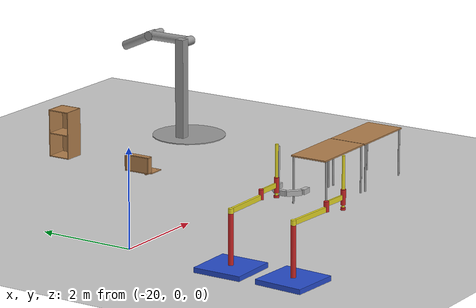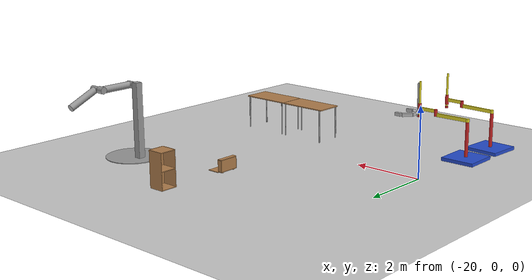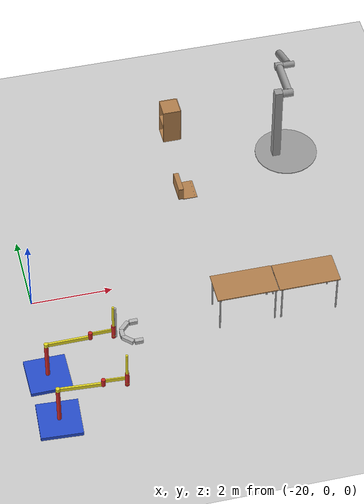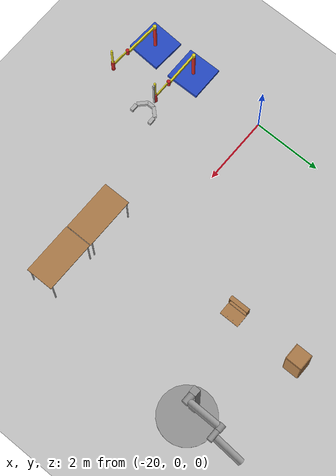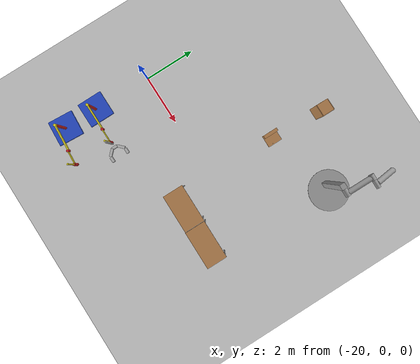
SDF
<sdf version="1.6">
 <world name="default">
  <model name="ground_plane">
   <static>1</static>
   <link name="link">
    <collision name="collision">
     <geometry><plane><normal>0 0 1</normal><size>100 100</size></plane></geometry>
     <surface>
      <contact><collide_bitmask>65535</collide_bitmask></contact>
      <friction><ode><mu>100</mu><mu2>50</mu2></ode></friction>
     </surface>
    </collision>
    <visual name="visual">
     <cast_shadows>0</cast_shadows>
     <geometry><plane><normal>0 0 1</normal><size>100 100</size></plane></geometry>
     <material>
      <script><uri>file://media/materials/scripts/gazebo.material</uri><name>Gazebo/Grey</name></script>
     </material>
    </visual>
   </link>
  </model>
  <model name="table_2">
   <static>1</static>
   <link name="link">
    <collision name="surface">
     <pose>0 0 1 0 -0 0</pose>
     <geometry><box><size>1.5 0.8 0.03</size></box></geometry>
     <surface><friction><ode><mu>0.6</mu><mu2>0.6</mu2></ode></friction></surface>
    </collision>
    <visual name="visual1">
     <pose>0 0 1 0 -0 0</pose>
     <geometry><box><size>1.5 0.8 0.03</size></box></geometry>
     <material>
      <script><uri>file://media/materials/scripts/gazebo.material</uri><name>Gazebo/Wood</name></script>
     </material>
    </visual>
    <collision name="front_left_leg">
     <pose>0.68 0.38 0.5 0 -0 0</pose>
     <geometry><cylinder><radius>0.02</radius><length>1</length></cylinder></geometry>
    </collision>
    <visual name="front_left_leg">
     <pose>0.68 0.38 0.5 0 -0 0</pose>
     <geometry><cylinder><radius>0.02</radius><length>1</length></cylinder></geometry>
     <material>
      <script><uri>file://media/materials/scripts/gazebo.material</uri><name>Gazebo/Grey</name></script>
     </material>
    </visual>
    <collision name="front_right_leg">
     <pose>0.68 -0.38 0.5 0 -0 0</pose>
     <geometry><cylinder><radius>0.02</radius><length>1</length></cylinder></geometry>
    </collision>
    <visual name="front_right_leg">
     <pose>0.68 -0.38 0.5 0 -0 0</pose>
     <geometry><cylinder><radius>0.02</radius><length>1</length></cylinder></geometry>
     <material>
      <script><uri>file://media/materials/scripts/gazebo.material</uri><name>Gazebo/Grey</name></script>
     </material>
    </visual>
    <collision name="back_right_leg">
     <pose>-0.68 -0.38 0.5 0 -0 0</pose>
     <geometry><cylinder><radius>0.02</radius><length>1</length></cylinder></geometry>
    </collision>
    <visual name="back_right_leg">
     <pose>-0.68 -0.38 0.5 0 -0 0</pose>
     <geometry><cylinder><radius>0.02</radius><length>1</length></cylinder></geometry>
     <material>
      <script><uri>file://media/materials/scripts/gazebo.material</uri><name>Gazebo/Grey</name></script>
     </material>
    </visual>
    <collision name="back_left_leg">
     <pose>-0.68 0.38 0.5 0 -0 0</pose>
     <geometry><cylinder><radius>0.02</radius><length>1</length></cylinder></geometry>
    </collision>
    <visual name="back_left_leg">
     <pose>-0.68 0.38 0.5 0 -0 0</pose>
     <geometry><cylinder><radius>0.02</radius><length>1</length></cylinder></geometry>
     <material>
      <script><uri>file://media/materials/scripts/gazebo.material</uri><name>Gazebo/Grey</name></script>
     </material>
    </visual>
   </link>
   <pose>-13.5378 -1.39791 0 0 -0 0</pose>
  </model>
  <model name="table_3">
   <static>1</static>
   <link name="link">
    <collision name="surface">
     <pose>0 0 1 0 -0 0</pose>
     <geometry><box><size>1.5 0.8 0.03</size></box></geometry>
     <surface><friction><ode><mu>0.6</mu><mu2>0.6</mu2></ode></friction></surface>
    </collision>
    <visual name="visual1">
     <pose>0 0 1 0 -0 0</pose>
     <geometry><box><size>1.5 0.8 0.03</size></box></geometry>
     <material>
      <script><uri>file://media/materials/scripts/gazebo.material</uri><name>Gazebo/Wood</name></script>
     </material>
    </visual>
    <collision name="front_left_leg">
     <pose>0.68 0.38 0.5 0 -0 0</pose>
     <geometry><cylinder><radius>0.02</radius><length>1</length></cylinder></geometry>
    </collision>
    <visual name="front_left_leg">
     <pose>0.68 0.38 0.5 0 -0 0</pose>
     <geometry><cylinder><radius>0.02</radius><length>1</length></cylinder></geometry>
     <material>
      <script><uri>file://media/materials/scripts/gazebo.material</uri><name>Gazebo/Grey</name></script>
     </material>
    </visual>
    <collision name="front_right_leg">
     <pose>0.68 -0.38 0.5 0 -0 0</pose>
     <geometry><cylinder><radius>0.02</radius><length>1</length></cylinder></geometry>
    </collision>
    <visual name="front_right_leg">
     <pose>0.68 -0.38 0.5 0 -0 0</pose>
     <geometry><cylinder><radius>0.02</radius><length>1</length></cylinder></geometry>
     <material>
      <script><uri>file://media/materials/scripts/gazebo.material</uri><name>Gazebo/Grey</name></script>
     </material>
    </visual>
    <collision name="back_right_leg">
     <pose>-0.68 -0.38 0.5 0 -0 0</pose>
     <geometry><cylinder><radius>0.02</radius><length>1</length></cylinder></geometry>
    </collision>
    <visual name="back_right_leg">
     <pose>-0.68 -0.38 0.5 0 -0 0</pose>
     <geometry><cylinder><radius>0.02</radius><length>1</length></cylinder></geometry>
     <material>
      <script><uri>file://media/materials/scripts/gazebo.material</uri><name>Gazebo/Grey</name></script>
     </material>
    </visual>
    <collision name="back_left_leg">
     <pose>-0.68 0.38 0.5 0 -0 0</pose>
     <geometry><cylinder><radius>0.02</radius><length>1</length></cylinder></geometry>
    </collision>
    <visual name="back_left_leg">
     <pose>-0.68 0.38 0.5 0 -0 0</pose>
     <geometry><cylinder><radius>0.02</radius><length>1</length></cylinder></geometry>
     <material>
      <script><uri>file://media/materials/scripts/gazebo.material</uri><name>Gazebo/Grey</name></script>
     </material>
    </visual>
   </link>
   <pose>-15.0543 -1.38833 0 0 -0 0</pose>
  </model>
  <model name="wooden_case">
   <link name="base">
    <pose>0 0 0.024 0 -0 0</pose>
    <inertial>
     <pose>-0.022184 0 0.171592 0 -0 0</pose>
     <mass>3.96264</mass>
     <inertia>
      <ixx>0.213536</ixx>
      <ixy>0</ixy>
      <ixz>0.000779377</ixz>
      <iyy>0.0708943</iyy>
      <iyz>0</iyz>
      <izz>0.154604</izz>
     </inertia>
    </inertial>
    <collision name="collision_back">
     <pose>-0.053975 0 0.1778 0 -0 0</pose>
     <geometry><box><size>0.01905 0.5461 0.3175</size></box></geometry>
     <surface>
      <contact>
       <poissons_ratio>0.347</poissons_ratio>
       <elastic_modulus>8.8e+09</elastic_modulus>
       <ode><kp>100000</kp><kd>100</kd><max_vel>100</max_vel><min_depth>0.001</min_depth></ode>
      </contact>
      <friction>
       <torsional>
        <coefficient>1</coefficient>
        <use_patch_radius>0</use_patch_radius>
        <surface_radius>0.01</surface_radius>
       </torsional>
      </friction>
     </surface>
    </collision>
    <visual name="visual_back">
     <pose>-0.053975 0 0.1778 0 -0 0</pose>
     <geometry><box><size>0.01905 0.5461 0.3175</size></box></geometry>
     <material>
      <script><uri>file://media/materials/scripts/gazebo.material</uri><name>Gazebo/Wood</name></script>
     </material>
    </visual>
    <collision name="collision_bottom">
     <pose>0 0 0.009525 0 -0 0</pose>
     <geometry><box><size>0.127 0.5842 0.01905</size></box></geometry>
     <surface>
      <contact>
       <poissons_ratio>0.347</poissons_ratio>
       <elastic_modulus>8.8e+09</elastic_modulus>
       <ode><kp>100000</kp><kd>100</kd><max_vel>100</max_vel><min_depth>0.001</min_depth></ode>
      </contact>
      <friction>
       <torsional>
        <coefficient>1</coefficient>
        <use_patch_radius>0</use_patch_radius>
        <surface_radius>0.01</surface_radius>
       </torsional>
      </friction>
     </surface>
    </collision>
    <visual name="visual_bottom">
     <pose>0 0 0.009525 0 -0 0</pose>
     <geometry><box><size>0.127 0.5842 0.01905</size></box></geometry>
     <material>
      <script><uri>file://media/materials/scripts/gazebo.material</uri><name>Gazebo/Wood</name></script>
     </material>
    </visual>
    <collision name="collision_top">
     <pose>0 0 0.346075 0 -0 0</pose>
     <geometry><box><size>0.127 0.5842 0.01905</size></box></geometry>
     <surface>
      <contact>
       <poissons_ratio>0.347</poissons_ratio>
       <elastic_modulus>8.8e+09</elastic_modulus>
       <ode><kp>100000</kp><kd>100</kd><max_vel>100</max_vel><min_depth>0.001</min_depth></ode>
      </contact>
      <friction>
       <torsional>
        <coefficient>1</coefficient>
        <use_patch_radius>0</use_patch_radius>
        <surface_radius>0.01</surface_radius>
       </torsional>
      </friction>
     </surface>
    </collision>
    <visual name="visual_top">
     <pose>0 0 0.346075 0 -0 0</pose>
     <geometry><box><size>0.127 0.5842 0.01905</size></box></geometry>
     <material>
      <script><uri>file://media/materials/scripts/gazebo.material</uri><name>Gazebo/Wood</name></script>
     </material>
    </visual>
    <collision name="collision_left">
     <pose>0 -0.282575 0.1778 0 -0 0</pose>
     <geometry><box><size>0.127 0.01905 0.3175</size></box></geometry>
     <surface>
      <contact>
       <poissons_ratio>0.347</poissons_ratio>
       <elastic_modulus>8.8e+09</elastic_modulus>
       <ode><kp>100000</kp><kd>100</kd><max_vel>100</max_vel><min_depth>0.001</min_depth></ode>
      </contact>
      <friction>
       <torsional>
        <coefficient>1</coefficient>
        <use_patch_radius>0</use_patch_radius>
        <surface_radius>0.01</surface_radius>
       </torsional>
      </friction>
     </surface>
    </collision>
    <visual name="visual_left">
     <pose>0 -0.282575 0.1778 0 -0 0</pose>
     <geometry><box><size>0.127 0.01905 0.3175</size></box></geometry>
     <material>
      <script><uri>file://media/materials/scripts/gazebo.material</uri><name>Gazebo/Wood</name></script>
     </material>
    </visual>
    <collision name="collision_right">
     <pose>0 0.282575 0.1778 0 -0 0</pose>
     <geometry><box><size>0.127 0.01905 0.3175</size></box></geometry>
     <surface>
      <contact>
       <poissons_ratio>0.347</poissons_ratio>
       <elastic_modulus>8.8e+09</elastic_modulus>
       <ode><kp>100000</kp><kd>100</kd><max_vel>100</max_vel><min_depth>0.001</min_depth></ode>
      </contact>
      <friction>
       <torsional>
        <coefficient>1</coefficient>
        <use_patch_radius>0</use_patch_radius>
        <surface_radius>0.01</surface_radius>
       </torsional>
      </friction>
     </surface>
    </collision>
    <visual name="visual_right">
     <pose>0 0.282575 0.1778 0 -0 0</pose>
     <geometry><box><size>0.127 0.01905 0.3175</size></box></geometry>
     <material>
      <script><uri>file://media/materials/scripts/gazebo.material</uri><name>Gazebo/Wood</name></script>
     </material>
    </visual>
    <collision name="collision_block_left">
     <pose>0.0095 -0.2151 -0.012 0 -0 0</pose>
     <geometry><box><size>0.108 0.05 0.024</size></box></geometry>
     <surface>
      <contact>
       <poissons_ratio>0.347</poissons_ratio>
       <elastic_modulus>8.8e+09</elastic_modulus>
       <ode><kp>100000</kp><kd>100</kd><max_vel>100</max_vel><min_depth>0.001</min_depth></ode>
      </contact>
      <friction>
       <torsional>
        <coefficient>1</coefficient>
        <use_patch_radius>0</use_patch_radius>
        <surface_radius>0.01</surface_radius>
       </torsional>
      </friction>
     </surface>
    </collision>
    <visual name="visual_block_left">
     <pose>0.0095 -0.2151 -0.012 0 -0 0</pose>
     <geometry><box><size>0.108 0.05 0.024</size></box></geometry>
     <material>
      <script><uri>file://media/materials/scripts/gazebo.material</uri><name>Gazebo/Wood</name></script>
     </material>
    </visual>
    <collision name="collision_block_right">
     <pose>0.0095 0.2151 -0.012 0 -0 0</pose>
     <geometry><box><size>0.108 0.05 0.024</size></box></geometry>
     <surface>
      <contact>
       <poissons_ratio>0.347</poissons_ratio>
       <elastic_modulus>8.8e+09</elastic_modulus>
       <ode><kp>100000</kp><kd>100</kd><max_vel>100</max_vel><min_depth>0.001</min_depth></ode>
      </contact>
      <friction>
       <torsional>
        <coefficient>1</coefficient>
        <use_patch_radius>0</use_patch_radius>
        <surface_radius>0.01</surface_radius>
       </torsional>
      </friction>
     </surface>
    </collision>
    <visual name="visual_block_right">
     <pose>0.0095 0.2151 -0.012 0 -0 0</pose>
     <geometry><box><size>0.108 0.05 0.024</size></box></geometry>
     <material>
      <script><uri>file://media/materials/scripts/gazebo.material</uri><name>Gazebo/Wood</name></script>
     </material>
    </visual>
   </link>
   <link name="lid">
    <pose>0.243775 0 0.009525 0 -0 0</pose>
    <inertial>
     <mass>1.97874</mass>
     <inertia>
      <ixx>0.0563367</ixx>
      <ixy>0</ixy>
      <ixz>0</ixz>
      <iyy>0.020911</iyy>
      <iyz>0</iyz>
      <izz>0.0771281</izz>
     </inertia>
    </inertial>
    <collision name="collision">
     <geometry><box><size>0.3556 0.5842 0.01905</size></box></geometry>
     <surface>
      <contact>
       <poissons_ratio>0.347</poissons_ratio>
       <elastic_modulus>8.8e+09</elastic_modulus>
       <ode><kp>100000</kp><kd>100</kd><max_vel>100</max_vel><min_depth>0.001</min_depth></ode>
      </contact>
      <friction>
       <torsional>
        <coefficient>1</coefficient>
        <use_patch_radius>0</use_patch_radius>
        <surface_radius>0.01</surface_radius>
       </torsional>
      </friction>
     </surface>
    </collision>
    <visual name="visual">
     <geometry><box><size>0.3556 0.5842 0.01905</size></box></geometry>
     <material>
      <script><uri>file://media/materials/scripts/gazebo.material</uri><name>Gazebo/Wood</name></script>
     </material>
    </visual>
    <visual name="tee_nut_1">
     <pose>0.122 -0.216 0 0 -0 0</pose>
     <geometry><cylinder><radius>0.00635</radius><length>0.0192405</length></cylinder></geometry>
     <material>
      <script><uri>file://media/materials/scripts/gazebo.material</uri><name>Gazebo/Grey</name></script>
     </material>
    </visual>
    <visual name="tee_nut_2">
     <pose>0.122 -0.088 0 0 -0 0</pose>
     <geometry><cylinder><radius>0.00635</radius><length>0.0192405</length></cylinder></geometry>
     <material>
      <script><uri>file://media/materials/scripts/gazebo.material</uri><name>Gazebo/Grey</name></script>
     </material>
    </visual>
    <visual name="tee_nut_3">
     <pose>0.122 0.088 0 0 -0 0</pose>
     <geometry><cylinder><radius>0.00635</radius><length>0.0192405</length></cylinder></geometry>
     <material>
      <script><uri>file://media/materials/scripts/gazebo.material</uri><name>Gazebo/Grey</name></script>
     </material>
    </visual>
    <visual name="tee_nut_4">
     <pose>0.122 0.216 0 0 -0 0</pose>
     <geometry><cylinder><radius>0.00635</radius><length>0.0192405</length></cylinder></geometry>
     <material>
      <script><uri>file://media/materials/scripts/gazebo.material</uri><name>Gazebo/Grey</name></script>
     </material>
    </visual>
   </link>
   <joint name="lid_hinge" type="revolute">
    <pose>-0.1778 0 0.01905 0 -0 0</pose>
    <parent>base</parent>
    <child>lid</child>
    <axis>
     <xyz>0 1 0</xyz>
     <limit><upper>0.523599</upper><lower>-1.5708</lower></limit>
     <use_parent_model_frame>0</use_parent_model_frame>
     <dynamics><spring_reference>0</spring_reference><spring_stiffness>0</spring_stiffness></dynamics>
    </axis>
   </joint>
   <pose>-15.6673 2.81921 0.008943 0 -0.000426 0.00517</pose>
  </model>
  <model name="cabinet">
   <static>1</static>
   <link name="cabinet_bottom_plate">
    <inertial>
     <pose>0 0 -1 0 -0 0</pose>
     <inertia><ixx>2.05</ixx><ixy>0</ixy><ixz>0</ixz><iyy>2.05</iyy><iyz>0</iyz><izz>2.05</izz></inertia>
     <mass>25</mass>
    </inertial>
    <collision name="cabinet_bottom_plate_geom">
     <pose>0 0 0.01 0 -0 0</pose>
     <geometry><box><size>0.45 0.45 0.02</size></box></geometry>
    </collision>
    <visual name="cabinet_bottom_plate_geom_visual">
     <pose>0 0 0.01 0 -0 0</pose>
     <geometry><box><size>0.45 0.45 0.02</size></box></geometry>
     <material>
      <script><uri>file://media/materials/scripts/gazebo.material</uri><name>Gazebo/Wood</name></script>
     </material>
    </visual>
    <collision name="cabinet_bottom_plate_geom_cabinet_back_plate">
     <pose>0.235 0 0.51 0 -0 0</pose>
     <geometry><box><size>0.02 0.45 1.02</size></box></geometry>
    </collision>
    <visual name="cabinet_bottom_plate_geom_cabinet_back_plate_visual">
     <pose>0.235 0 0.51 0 -0 0</pose>
     <geometry><box><size>0.02 0.45 1.02</size></box></geometry>
     <material>
      <script><uri>file://media/materials/scripts/gazebo.material</uri><name>Gazebo/Wood</name></script>
     </material>
    </visual>
    <collision name="cabinet_bottom_plate_geom_cabinet_left_plate">
     <pose>0 0.235 0.51 0 -0 0</pose>
     <geometry><box><size>0.45 0.02 1.02</size></box></geometry>
    </collision>
    <visual name="cabinet_bottom_plate_geom_cabinet_left_plate_visual">
     <pose>0 0.235 0.51 0 -0 0</pose>
     <geometry><box><size>0.45 0.02 1.02</size></box></geometry>
     <material>
      <script><uri>file://media/materials/scripts/gazebo.material</uri><name>Gazebo/Wood</name></script>
     </material>
    </visual>
    <collision name="cabinet_bottom_plate_geom_cabinet_middle_plate">
     <pose>0 0 0.51 0 -0 0</pose>
     <geometry><box><size>0.45 0.45 0.02</size></box></geometry>
    </collision>
    <visual name="cabinet_bottom_plate_geom_cabinet_middle_plate_visual">
     <pose>0 0 0.51 0 -0 0</pose>
     <geometry><box><size>0.45 0.45 0.02</size></box></geometry>
     <material>
      <script><uri>file://media/materials/scripts/gazebo.material</uri><name>Gazebo/Wood</name></script>
     </material>
    </visual>
    <collision name="cabinet_bottom_plate_geom_cabinet_right_plate">
     <pose>0 -0.235 0.51 0 -0 0</pose>
     <geometry><box><size>0.45 0.02 1.02</size></box></geometry>
    </collision>
    <visual name="cabinet_bottom_plate_geom_cabinet_right_plate_visual">
     <pose>0 -0.235 0.51 0 -0 0</pose>
     <geometry><box><size>0.45 0.02 1.02</size></box></geometry>
     <material>
      <script><uri>file://media/materials/scripts/gazebo.material</uri><name>Gazebo/Wood</name></script>
     </material>
    </visual>
    <collision name="cabinet_bottom_plate_geom_cabinet_top_plate">
     <pose>0 0 1.01 0 -0 0</pose>
     <geometry><box><size>0.45 0.45 0.02</size></box></geometry>
    </collision>
    <visual name="cabinet_bottom_plate_geom_cabinet_top_plate_visual">
     <pose>0 0 1.01 0 -0 0</pose>
     <geometry><box><size>0.45 0.45 0.02</size></box></geometry>
     <material>
      <script><uri>file://media/materials/scripts/gazebo.material</uri><name>Gazebo/Wood</name></script>
     </material>
    </visual>
   </link>
   <pose>-15.4113 4.88429 0 0 -0 0</pose>
  </model>
  <model name="double_pendulum_with_base">
   <link name="base">
    <inertial>
     <mass>100</mass>
     <inertia><ixx>1</ixx><ixy>0</ixy><ixz>0</ixz><iyy>1</iyy><iyz>0</iyz><izz>1</izz></inertia>
    </inertial>
    <visual name="vis_plate_on_ground">
     <pose>0 0 0.01 0 -0 0</pose>
     <geometry><cylinder><radius>0.8</radius><length>0.02</length></cylinder></geometry>
     <material>
      <script><uri>file://media/materials/scripts/gazebo.material</uri><name>Gazebo/Grey</name></script>
     </material>
    </visual>
    <visual name="vis_pole">
     <pose>-0.275 0 1.1 0 -0 0</pose>
     <geometry><box><size>0.2 0.2 2.2</size></box></geometry>
     <material>
      <script><uri>file://media/materials/scripts/gazebo.material</uri><name>Gazebo/Grey</name></script>
     </material>
    </visual>
    <collision name="col_plate_on_ground">
     <pose>0 0 0.01 0 -0 0</pose>
     <geometry><cylinder><radius>0.8</radius><length>0.02</length></cylinder></geometry>
    </collision>
    <collision name="col_pole">
     <pose>-0.275 0 1.1 0 -0 0</pose>
     <geometry><box><size>0.2 0.2 2.2</size></box></geometry>
    </collision>
   </link>
   <link name="upper_link">
    <pose>0 0 2.1 -1.5708 0 0</pose>
    <inertial>
     <pose>0 0 0.5 0 -0 0</pose>
     <inertia><ixx>1</ixx><ixy>0</ixy><ixz>0</ixz><iyy>1</iyy><iyz>0</iyz><izz>1</izz></inertia>
     <mass>1</mass>
    </inertial>
    <visual name="vis_upper_joint">
     <pose>-0.05 0 0 3.14159 1.57079 3.14159</pose>
     <geometry><cylinder><radius>0.1</radius><length>0.3</length></cylinder></geometry>
     <material>
      <script><uri>file://media/materials/scripts/gazebo.material</uri><name>Gazebo/Grey</name></script>
     </material>
    </visual>
    <visual name="vis_lower_joint">
     <pose>0 0 1 3.14159 1.57079 3.14159</pose>
     <geometry><cylinder><radius>0.1</radius><length>0.2</length></cylinder></geometry>
     <material>
      <script><uri>file://media/materials/scripts/gazebo.material</uri><name>Gazebo/Grey</name></script>
     </material>
    </visual>
    <visual name="vis_cylinder">
     <pose>0 0 0.5 0 -0 0</pose>
     <geometry><cylinder><radius>0.1</radius><length>0.9</length></cylinder></geometry>
     <material>
      <script><uri>file://media/materials/scripts/gazebo.material</uri><name>Gazebo/Grey</name></script>
     </material>
    </visual>
    <collision name="col_upper_joint">
     <pose>-0.05 0 0 3.14159 1.57079 3.14159</pose>
     <geometry><cylinder><radius>0.1</radius><length>0.3</length></cylinder></geometry>
    </collision>
    <collision name="col_lower_joint">
     <pose>0 0 1 3.14159 1.57079 3.14159</pose>
     <geometry><cylinder><radius>0.1</radius><length>0.2</length></cylinder></geometry>
    </collision>
    <collision name="col_cylinder">
     <pose>0 0 0.5 0 -0 0</pose>
     <geometry><cylinder><radius>0.1</radius><length>0.9</length></cylinder></geometry>
    </collision>
   </link>
   <link name="lower_link">
    <pose>0.25 1 2.1 -2 0 0</pose>
    <inertial>
     <pose>0 0 0.5 0 -0 0</pose>
     <inertia><ixx>1</ixx><ixy>0</ixy><ixz>0</ixz><iyy>1</iyy><iyz>0</iyz><izz>1</izz></inertia>
     <mass>1</mass>
    </inertial>
    <visual name="vis_lower_joint">
     <pose>0 0 0 3.14159 1.57079 3.14159</pose>
     <geometry><cylinder><radius>0.08</radius><length>0.3</length></cylinder></geometry>
     <material>
      <script><uri>file://media/materials/scripts/gazebo.material</uri><name>Gazebo/Grey</name></script>
     </material>
    </visual>
    <visual name="vis_cylinder">
     <pose>0 0 0.5 0 -0 0</pose>
     <geometry><cylinder><radius>0.1</radius><length>0.9</length></cylinder></geometry>
     <material>
      <script><uri>file://media/materials/scripts/gazebo.material</uri><name>Gazebo/Grey</name></script>
     </material>
    </visual>
    <collision name="col_lower_joint">
     <pose>0 0 0 3.14159 1.57079 3.14159</pose>
     <geometry><cylinder><radius>0.08</radius><length>0.3</length></cylinder></geometry>
    </collision>
    <collision name="col_cylinder">
     <pose>0 0 0.5 0 -0 0</pose>
     <geometry><cylinder><radius>0.1</radius><length>0.9</length></cylinder></geometry>
    </collision>
   </link>
   <joint name="upper_joint" type="revolute">
    <parent>base</parent>
    <child>upper_link</child>
    <axis>
     <xyz>1 0 0</xyz>
     <use_parent_model_frame>0</use_parent_model_frame>
     <limit><lower>-1e+16</lower><upper>1e+16</upper></limit>
     <dynamics><spring_reference>0</spring_reference><spring_stiffness>0</spring_stiffness></dynamics>
    </axis>
   </joint>
   <joint name="lower_joint" type="revolute">
    <parent>upper_link</parent>
    <child>lower_link</child>
    <axis>
     <xyz>1 0 0</xyz>
     <use_parent_model_frame>0</use_parent_model_frame>
     <limit><lower>-1e+16</lower><upper>1e+16</upper></limit>
     <dynamics><spring_reference>0</spring_reference><spring_stiffness>0</spring_stiffness></dynamics>
    </axis>
   </joint>
   <pose>-12.6435 3.57886 0.01 0 0 -0.006716</pose>
  </model>
  <model name="simple_arm">
   <link name="arm_base">
    <inertial>
     <pose>0 0 0.00099 0 -0 0</pose>
     <inertia><ixx>1.11</ixx><ixy>0</ixy><ixz>0</ixz><iyy>100.11</iyy><iyz>0</iyz><izz>1.01</izz></inertia>
     <mass>101</mass>
    </inertial>
    <collision name="arm_base_geom">
     <pose>0 0 0.05 0 -0 0</pose>
     <geometry><box><size>1 1 0.1</size></box></geometry>
    </collision>
    <visual name="arm_base_geom_visual">
     <pose>0 0 0.05 0 -0 0</pose>
     <geometry><box><size>1 1 0.1</size></box></geometry>
     <material>
      <script><uri>file://media/materials/scripts/gazebo.material</uri><name>Gazebo/Blue</name></script>
     </material>
    </visual>
    <collision name="arm_base_geom_arm_trunk">
     <pose>0 0 0.6 0 -0 0</pose>
     <geometry><cylinder><radius>0.05</radius><length>1</length></cylinder></geometry>
    </collision>
    <visual name="arm_base_geom_arm_trunk_visual">
     <pose>0 0 0.6 0 -0 0</pose>
     <geometry><cylinder><radius>0.05</radius><length>1</length></cylinder></geometry>
     <material>
      <script><uri>file://media/materials/scripts/gazebo.material</uri><name>Gazebo/Red</name></script>
     </material>
    </visual>
   </link>
   <link name="arm_shoulder_pan">
    <pose>0 0 1.1 0 -0 0</pose>
    <inertial>
     <pose>0.045455 0 0 0 -0 0</pose>
     <inertia><ixx>0.011</ixx><ixy>0</ixy><ixz>0</ixz><iyy>0.0225</iyy><iyz>0</iyz><izz>0.0135</izz></inertia>
     <mass>1.1</mass>
    </inertial>
    <collision name="arm_shoulder_pan_geom">
     <pose>0 0 0.05 0 -0 0</pose>
     <geometry><cylinder><radius>0.05</radius><length>0.1</length></cylinder></geometry>
    </collision>
    <visual name="arm_shoulder_pan_geom_visual">
     <pose>0 0 0.05 0 -0 0</pose>
     <geometry><cylinder><radius>0.05</radius><length>0.1</length></cylinder></geometry>
     <material>
      <script><uri>file://media/materials/scripts/gazebo.material</uri><name>Gazebo/Yellow</name></script>
     </material>
    </visual>
    <collision name="arm_shoulder_pan_geom_arm_shoulder">
     <pose>0.55 0 0.05 0 -0 0</pose>
     <geometry><box><size>1 0.05 0.1</size></box></geometry>
    </collision>
    <visual name="arm_shoulder_pan_geom_arm_shoulder_visual">
     <pose>0.55 0 0.05 0 -0 0</pose>
     <geometry><box><size>1 0.05 0.1</size></box></geometry>
     <material>
      <script><uri>file://media/materials/scripts/gazebo.material</uri><name>Gazebo/Yellow</name></script>
     </material>
    </visual>
   </link>
   <link name="arm_elbow_pan">
    <pose>1.05 0 1.1 0 -0 0</pose>
    <inertial>
     <pose>0.0875 0 0.083333 0 -0 0</pose>
     <inertia>
      <ixx>0.031</ixx>
      <ixy>0</ixy>
      <ixz>0.005</ixz>
      <iyy>0.07275</iyy>
      <iyz>0</iyz>
      <izz>0.04475</izz>
     </inertia>
     <mass>1.2</mass>
    </inertial>
    <collision name="arm_elbow_pan_geom">
     <pose>0 0 0.1 0 -0 0</pose>
     <geometry><cylinder><radius>0.05</radius><length>0.2</length></cylinder></geometry>
    </collision>
    <visual name="arm_elbow_pan_geom_visual">
     <pose>0 0 0.1 0 -0 0</pose>
     <geometry><cylinder><radius>0.05</radius><length>0.2</length></cylinder></geometry>
     <material>
      <script><uri>file://media/materials/scripts/gazebo.material</uri><name>Gazebo/Red</name></script>
     </material>
    </visual>
    <collision name="arm_elbow_pan_geom_arm_elbow">
     <pose>0.3 0 0.15 0 -0 0</pose>
     <geometry><box><size>0.5 0.03 0.1</size></box></geometry>
    </collision>
    <visual name="arm_elbow_pan_geom_arm_elbow_visual">
     <pose>0.3 0 0.15 0 -0 0</pose>
     <geometry><box><size>0.5 0.03 0.1</size></box></geometry>
     <material>
      <script><uri>file://media/materials/scripts/gazebo.material</uri><name>Gazebo/Yellow</name></script>
     </material>
    </visual>
    <collision name="arm_elbow_pan_geom_arm_wrist">
     <pose>0.55 0 0.15 0 -0 0</pose>
     <geometry><cylinder><radius>0.05</radius><length>0.3</length></cylinder></geometry>
    </collision>
    <visual name="arm_elbow_pan_geom_arm_wrist_visual">
     <pose>0.55 0 0.15 0 -0 0</pose>
     <geometry><cylinder><radius>0.05</radius><length>0.3</length></cylinder></geometry>
     <material>
      <script><uri>file://media/materials/scripts/gazebo.material</uri><name>Gazebo/Red</name></script>
     </material>
    </visual>
   </link>
   <link name="arm_wrist_lift">
    <pose>1.6 0 1.05 0 -0 0</pose>
    <inertial>
     <inertia><ixx>0.01</ixx><ixy>0</ixy><ixz>0</ixz><iyy>0.01</iyy><iyz>0</iyz><izz>0.001</izz></inertia>
     <mass>0.1</mass>
    </inertial>
    <collision name="arm_wrist_lift_geom">
     <pose>0 0 0.5 0 -0 0</pose>
     <geometry><cylinder><radius>0.03</radius><length>1</length></cylinder></geometry>
    </collision>
    <visual name="arm_wrist_lift_geom_visual">
     <pose>0 0 0.5 0 -0 0</pose>
     <geometry><cylinder><radius>0.03</radius><length>1</length></cylinder></geometry>
     <material>
      <script><uri>file://media/materials/scripts/gazebo.material</uri><name>Gazebo/Yellow</name></script>
     </material>
    </visual>
   </link>
   <link name="arm_wrist_roll">
    <pose>1.6 0 1 0 -0 0</pose>
    <inertial>
     <inertia><ixx>0.01</ixx><ixy>0</ixy><ixz>0</ixz><iyy>0.01</iyy><iyz>0</iyz><izz>0.001</izz></inertia>
     <mass>0.1</mass>
    </inertial>
    <collision name="arm_wrist_roll_geom">
     <pose>0 0 0.025 0 -0 0</pose>
     <geometry><cylinder><radius>0.05</radius><length>0.05</length></cylinder></geometry>
    </collision>
    <visual name="arm_wrist_roll_geom_visual">
     <pose>0 0 0.025 0 -0 0</pose>
     <geometry><cylinder><radius>0.05</radius><length>0.05</length></cylinder></geometry>
     <material>
      <script><uri>file://media/materials/scripts/gazebo.material</uri><name>Gazebo/Red</name></script>
     </material>
    </visual>
   </link>
   <joint name="arm_shoulder_pan_joint" type="revolute">
    <parent>arm_base</parent>
    <child>arm_shoulder_pan</child>
    <axis>
     <dynamics>
      <damping>1</damping>
      <friction>0</friction>
      <spring_reference>0</spring_reference>
      <spring_stiffness>0</spring_stiffness>
     </dynamics>
     <xyz>0 0 1</xyz>
     <use_parent_model_frame>1</use_parent_model_frame>
     <limit><lower>-1e+16</lower><upper>1e+16</upper></limit>
    </axis>
   </joint>
   <joint name="arm_elbow_pan_joint" type="revolute">
    <parent>arm_shoulder_pan</parent>
    <child>arm_elbow_pan</child>
    <axis>
     <dynamics>
      <damping>1</damping>
      <friction>0</friction>
      <spring_reference>0</spring_reference>
      <spring_stiffness>0</spring_stiffness>
     </dynamics>
     <xyz>0 0 1</xyz>
     <use_parent_model_frame>1</use_parent_model_frame>
     <limit><lower>-1e+16</lower><upper>1e+16</upper></limit>
    </axis>
   </joint>
   <joint name="arm_wrist_lift_joint" type="prismatic">
    <parent>arm_elbow_pan</parent>
    <child>arm_wrist_lift</child>
    <axis>
     <dynamics>
      <damping>1</damping>
      <friction>0</friction>
      <spring_reference>0</spring_reference>
      <spring_stiffness>0</spring_stiffness>
     </dynamics>
     <limit><lower>-0.8</lower><upper>0.1</upper></limit>
     <xyz>0 0 1</xyz>
     <use_parent_model_frame>1</use_parent_model_frame>
    </axis>
   </joint>
   <joint name="arm_wrist_roll_joint" type="revolute">
    <parent>arm_wrist_lift</parent>
    <child>arm_wrist_roll</child>
    <axis>
     <dynamics>
      <damping>1</damping>
      <friction>0</friction>
      <spring_reference>0</spring_reference>
      <spring_stiffness>0</spring_stiffness>
     </dynamics>
     <limit><lower>-2.99999</lower><upper>2.99999</upper></limit>
     <xyz>0 0 1</xyz>
     <use_parent_model_frame>1</use_parent_model_frame>
    </axis>
   </joint>
   <pose>-20.0274 -3.66934 0.00989 0.000226 -3e-06 -0.058492</pose>
  </model>
  <model name="simple_arm_gripper">
   <link name="simple_arm::arm_base">
    <inertial>
     <pose>0 0 0.00099 0 -0 0</pose>
     <inertia><ixx>1.11</ixx><ixy>0</ixy><ixz>0</ixz><iyy>100.11</iyy><iyz>0</iyz><izz>1.01</izz></inertia>
     <mass>101</mass>
    </inertial>
    <collision name="arm_base_geom">
     <pose>0 0 0.05 0 -0 0</pose>
     <geometry><box><size>1 1 0.1</size></box></geometry>
    </collision>
    <visual name="arm_base_geom_visual">
     <pose>0 0 0.05 0 -0 0</pose>
     <geometry><box><size>1 1 0.1</size></box></geometry>
     <material>
      <script><uri>file://media/materials/scripts/gazebo.material</uri><name>Gazebo/Blue</name></script>
     </material>
    </visual>
    <collision name="arm_base_geom_arm_trunk">
     <pose>0 0 0.6 0 -0 0</pose>
     <geometry><cylinder><radius>0.05</radius><length>1</length></cylinder></geometry>
    </collision>
    <visual name="arm_base_geom_arm_trunk_visual">
     <pose>0 0 0.6 0 -0 0</pose>
     <geometry><cylinder><radius>0.05</radius><length>1</length></cylinder></geometry>
     <material>
      <script><uri>file://media/materials/scripts/gazebo.material</uri><name>Gazebo/Red</name></script>
     </material>
    </visual>
   </link>
   <link name="simple_arm::arm_shoulder_pan">
    <pose>0 0 1.1 0 -0 0</pose>
    <inertial>
     <pose>0.045455 0 0 0 -0 0</pose>
     <inertia><ixx>0.011</ixx><ixy>0</ixy><ixz>0</ixz><iyy>0.0225</iyy><iyz>0</iyz><izz>0.0135</izz></inertia>
     <mass>1.1</mass>
    </inertial>
    <collision name="arm_shoulder_pan_geom">
     <pose>0 0 0.05 0 -0 0</pose>
     <geometry><cylinder><radius>0.05</radius><length>0.1</length></cylinder></geometry>
    </collision>
    <visual name="arm_shoulder_pan_geom_visual">
     <pose>0 0 0.05 0 -0 0</pose>
     <geometry><cylinder><radius>0.05</radius><length>0.1</length></cylinder></geometry>
     <material>
      <script><uri>file://media/materials/scripts/gazebo.material</uri><name>Gazebo/Yellow</name></script>
     </material>
    </visual>
    <collision name="arm_shoulder_pan_geom_arm_shoulder">
     <pose>0.55 0 0.05 0 -0 0</pose>
     <geometry><box><size>1 0.05 0.1</size></box></geometry>
    </collision>
    <visual name="arm_shoulder_pan_geom_arm_shoulder_visual">
     <pose>0.55 0 0.05 0 -0 0</pose>
     <geometry><box><size>1 0.05 0.1</size></box></geometry>
     <material>
      <script><uri>file://media/materials/scripts/gazebo.material</uri><name>Gazebo/Yellow</name></script>
     </material>
    </visual>
   </link>
   <link name="simple_arm::arm_elbow_pan">
    <pose>1.05 0 1.1 0 -0 0</pose>
    <inertial>
     <pose>0.0875 0 0.083333 0 -0 0</pose>
     <inertia>
      <ixx>0.031</ixx>
      <ixy>0</ixy>
      <ixz>0.005</ixz>
      <iyy>0.07275</iyy>
      <iyz>0</iyz>
      <izz>0.04475</izz>
     </inertia>
     <mass>1.2</mass>
    </inertial>
    <collision name="arm_elbow_pan_geom">
     <pose>0 0 0.1 0 -0 0</pose>
     <geometry><cylinder><radius>0.05</radius><length>0.2</length></cylinder></geometry>
    </collision>
    <visual name="arm_elbow_pan_geom_visual">
     <pose>0 0 0.1 0 -0 0</pose>
     <geometry><cylinder><radius>0.05</radius><length>0.2</length></cylinder></geometry>
     <material>
      <script><uri>file://media/materials/scripts/gazebo.material</uri><name>Gazebo/Red</name></script>
     </material>
    </visual>
    <collision name="arm_elbow_pan_geom_arm_elbow">
     <pose>0.3 0 0.15 0 -0 0</pose>
     <geometry><box><size>0.5 0.03 0.1</size></box></geometry>
    </collision>
    <visual name="arm_elbow_pan_geom_arm_elbow_visual">
     <pose>0.3 0 0.15 0 -0 0</pose>
     <geometry><box><size>0.5 0.03 0.1</size></box></geometry>
     <material>
      <script><uri>file://media/materials/scripts/gazebo.material</uri><name>Gazebo/Yellow</name></script>
     </material>
    </visual>
    <collision name="arm_elbow_pan_geom_arm_wrist">
     <pose>0.55 0 0.15 0 -0 0</pose>
     <geometry><cylinder><radius>0.05</radius><length>0.3</length></cylinder></geometry>
    </collision>
    <visual name="arm_elbow_pan_geom_arm_wrist_visual">
     <pose>0.55 0 0.15 0 -0 0</pose>
     <geometry><cylinder><radius>0.05</radius><length>0.3</length></cylinder></geometry>
     <material>
      <script><uri>file://media/materials/scripts/gazebo.material</uri><name>Gazebo/Red</name></script>
     </material>
    </visual>
   </link>
   <link name="simple_arm::arm_wrist_lift">
    <pose>1.6 0 1.05 0 -0 0</pose>
    <inertial>
     <inertia><ixx>0.01</ixx><ixy>0</ixy><ixz>0</ixz><iyy>0.01</iyy><iyz>0</iyz><izz>0.001</izz></inertia>
     <mass>0.1</mass>
    </inertial>
    <collision name="arm_wrist_lift_geom">
     <pose>0 0 0.5 0 -0 0</pose>
     <geometry><cylinder><radius>0.03</radius><length>1</length></cylinder></geometry>
    </collision>
    <visual name="arm_wrist_lift_geom_visual">
     <pose>0 0 0.5 0 -0 0</pose>
     <geometry><cylinder><radius>0.03</radius><length>1</length></cylinder></geometry>
     <material>
      <script><uri>file://media/materials/scripts/gazebo.material</uri><name>Gazebo/Yellow</name></script>
     </material>
    </visual>
   </link>
   <link name="simple_arm::arm_wrist_roll">
    <pose>1.6 0 1 0 -0 0</pose>
    <inertial>
     <inertia><ixx>0.01</ixx><ixy>0</ixy><ixz>0</ixz><iyy>0.01</iyy><iyz>0</iyz><izz>0.001</izz></inertia>
     <mass>0.1</mass>
    </inertial>
    <collision name="arm_wrist_roll_geom">
     <pose>0 0 0.025 0 -0 0</pose>
     <geometry><cylinder><radius>0.05</radius><length>0.05</length></cylinder></geometry>
    </collision>
    <visual name="arm_wrist_roll_geom_visual">
     <pose>0 0 0.025 0 -0 0</pose>
     <geometry><cylinder><radius>0.05</radius><length>0.05</length></cylinder></geometry>
     <material>
      <script><uri>file://media/materials/scripts/gazebo.material</uri><name>Gazebo/Red</name></script>
     </material>
    </visual>
   </link>
   <joint name="simple_arm::arm_shoulder_pan_joint" type="revolute">
    <parent>simple_arm::arm_base</parent>
    <child>simple_arm::arm_shoulder_pan</child>
    <axis>
     <dynamics>
      <damping>1</damping>
      <friction>0</friction>
      <spring_reference>0</spring_reference>
      <spring_stiffness>0</spring_stiffness>
     </dynamics>
     <xyz>0 0 1</xyz>
     <use_parent_model_frame>1</use_parent_model_frame>
     <limit><lower>-1e+16</lower><upper>1e+16</upper></limit>
    </axis>
   </joint>
   <joint name="simple_arm::arm_elbow_pan_joint" type="revolute">
    <parent>simple_arm::arm_shoulder_pan</parent>
    <child>simple_arm::arm_elbow_pan</child>
    <axis>
     <dynamics>
      <damping>1</damping>
      <friction>0</friction>
      <spring_reference>0</spring_reference>
      <spring_stiffness>0</spring_stiffness>
     </dynamics>
     <xyz>0 0 1</xyz>
     <use_parent_model_frame>1</use_parent_model_frame>
     <limit><lower>-1e+16</lower><upper>1e+16</upper></limit>
    </axis>
   </joint>
   <joint name="simple_arm::arm_wrist_lift_joint" type="prismatic">
    <parent>simple_arm::arm_elbow_pan</parent>
    <child>simple_arm::arm_wrist_lift</child>
    <axis>
     <dynamics>
      <damping>1</damping>
      <friction>0</friction>
      <spring_reference>0</spring_reference>
      <spring_stiffness>0</spring_stiffness>
     </dynamics>
     <limit><lower>-0.8</lower><upper>0.1</upper></limit>
     <xyz>0 0 1</xyz>
     <use_parent_model_frame>1</use_parent_model_frame>
    </axis>
   </joint>
   <joint name="simple_arm::arm_wrist_roll_joint" type="revolute">
    <parent>simple_arm::arm_wrist_lift</parent>
    <child>simple_arm::arm_wrist_roll</child>
    <axis>
     <dynamics>
      <damping>1</damping>
      <friction>0</friction>
      <spring_reference>0</spring_reference>
      <spring_stiffness>0</spring_stiffness>
     </dynamics>
     <limit><lower>-2.99999</lower><upper>2.99999</upper></limit>
     <xyz>0 0 1</xyz>
     <use_parent_model_frame>1</use_parent_model_frame>
    </axis>
   </joint>
   <link name="simple_gripper::riser">
    <pose>1.65 0 1.5 0 -0 0</pose>
    <inertial>
     <mass>10</mass>
     <inertia><ixx>1</ixx><ixy>0</ixy><ixz>0</ixz><iyy>1</iyy><iyz>0</iyz><izz>1</izz></inertia>
    </inertial>
    <collision name="collision">
     <geometry><box><size>0.05 0.05 1</size></box></geometry>
     <surface><contact><ode><max_vel>0</max_vel></ode></contact></surface>
    </collision>
    <visual name="visual"><geometry><box><size>0.05 0.05 1</size></box></geometry></visual>
   </link>
   <link name="simple_gripper::palm">
    <pose>1.8 0 1.05 0 -0 0</pose>
    <inertial>
     <mass>0.5</mass>
     <inertia><ixx>1</ixx><ixy>0</ixy><ixz>0</ixz><iyy>1</iyy><iyz>0</iyz><izz>1</izz></inertia>
    </inertial>
    <collision name="collision">
     <geometry><box><size>0.1 0.2 0.1</size></box></geometry>
     <surface><contact><ode><max_vel>0</max_vel></ode></contact></surface>
    </collision>
    <visual name="visual"><geometry><box><size>0.1 0.2 0.1</size></box></geometry></visual>
   </link>
   <link name="simple_gripper::left_finger">
    <pose>1.9 0.2 1.05 0 0 -0.78539</pose>
    <inertial>
     <mass>0.1</mass>
     <inertia><ixx>1</ixx><ixy>0</ixy><ixz>0</ixz><iyy>1</iyy><iyz>0</iyz><izz>1</izz></inertia>
    </inertial>
    <collision name="collision">
     <geometry><box><size>0.1 0.3 0.1</size></box></geometry>
     <surface>
      <friction><ode><mu>0.1</mu><mu2>0</mu2></ode></friction>
      <contact><ode><max_vel>0</max_vel></ode></contact>
     </surface>
    </collision>
    <visual name="visual"><geometry><box><size>0.1 0.3 0.1</size></box></geometry></visual>
   </link>
   <link name="simple_gripper::left_finger_tip">
    <pose>2.136 0.3 1.05 0 -0 1.5707</pose>
    <inertial>
     <mass>0.5</mass>
     <inertia><ixx>1</ixx><ixy>0</ixy><ixz>0</ixz><iyy>1</iyy><iyz>0</iyz><izz>1</izz></inertia>
    </inertial>
    <collision name="collision">
     <geometry><box><size>0.1 0.2 0.1</size></box></geometry>
     <surface>
      <friction><ode><mu>0.1</mu><mu2>0</mu2></ode></friction>
      <contact><ode><max_vel>0</max_vel></ode></contact>
     </surface>
    </collision>
    <visual name="visual"><geometry><box><size>0.1 0.2 0.1</size></box></geometry></visual>
   </link>
   <link name="simple_gripper::right_finger">
    <pose>1.9 -0.2 1.05 0 -0 0.78539</pose>
    <inertial>
     <mass>0.1</mass>
     <inertia><ixx>1</ixx><ixy>0</ixy><ixz>0</ixz><iyy>1</iyy><iyz>0</iyz><izz>1</izz></inertia>
    </inertial>
    <collision name="collision">
     <geometry><box><size>0.1 0.3 0.1</size></box></geometry>
     <surface>
      <friction><ode><mu>0.1</mu><mu2>0</mu2></ode></friction>
      <contact><ode><max_vel>0</max_vel></ode></contact>
     </surface>
    </collision>
    <visual name="visual"><geometry><box><size>0.1 0.3 0.1</size></box></geometry></visual>
   </link>
   <link name="simple_gripper::right_finger_tip">
    <pose>2.136 -0.3 1.05 0 -0 1.5707</pose>
    <inertial>
     <mass>0.1</mass>
     <inertia><ixx>1</ixx><ixy>0</ixy><ixz>0</ixz><iyy>1</iyy><iyz>0</iyz><izz>1</izz></inertia>
    </inertial>
    <collision name="collision">
     <geometry><box><size>0.1 0.2 0.1</size></box></geometry>
     <surface>
      <friction><ode><mu>0.1</mu><mu2>0</mu2></ode></friction>
      <contact><ode><max_vel>0</max_vel></ode></contact>
     </surface>
    </collision>
    <visual name="visual"><geometry><box><size>0.1 0.2 0.1</size></box></geometry></visual>
   </link>
   <joint name="simple_gripper::palm_left_finger" type="revolute">
    <pose>0 -0.15 0 0 -0 0</pose>
    <child>simple_gripper::left_finger</child>
    <parent>simple_gripper::palm</parent>
    <axis>
     <limit><lower>-0.8</lower><upper>0.8</upper></limit>
     <xyz>0 0 1</xyz>
     <use_parent_model_frame>1</use_parent_model_frame>
     <dynamics><spring_reference>0</spring_reference><spring_stiffness>0</spring_stiffness></dynamics>
    </axis>
   </joint>
   <joint name="simple_gripper::left_finger_tip" type="revolute">
    <pose>0 0.1 0 0 -0 0</pose>
    <child>simple_gripper::left_finger_tip</child>
    <parent>simple_gripper::left_finger</parent>
    <axis>
     <limit><lower>-0.8</lower><upper>0.8</upper></limit>
     <xyz>0 0 1</xyz>
     <use_parent_model_frame>1</use_parent_model_frame>
     <dynamics><spring_reference>0</spring_reference><spring_stiffness>0</spring_stiffness></dynamics>
    </axis>
   </joint>
   <joint name="simple_gripper::palm_right_finger" type="revolute">
    <pose>0 0.15 0 0 -0 0</pose>
    <child>simple_gripper::right_finger</child>
    <parent>simple_gripper::palm</parent>
    <axis>
     <limit><lower>-0.8</lower><upper>0.8</upper></limit>
     <xyz>0 0 1</xyz>
     <use_parent_model_frame>1</use_parent_model_frame>
     <dynamics><spring_reference>0</spring_reference><spring_stiffness>0</spring_stiffness></dynamics>
    </axis>
   </joint>
   <joint name="simple_gripper::right_finger_tip" type="revolute">
    <pose>0 0.1 0 0 -0 0</pose>
    <child>simple_gripper::right_finger_tip</child>
    <parent>simple_gripper::right_finger</parent>
    <axis>
     <limit><lower>-0.8</lower><upper>0.8</upper></limit>
     <xyz>0 0 1</xyz>
     <use_parent_model_frame>1</use_parent_model_frame>
     <dynamics><spring_reference>0</spring_reference><spring_stiffness>0</spring_stiffness></dynamics>
    </axis>
   </joint>
   <joint name="simple_gripper::palm_riser" type="prismatic">
    <child>simple_gripper::palm</child>
    <parent>simple_gripper::riser</parent>
    <axis>
     <limit><lower>0</lower><upper>0.9</upper></limit>
     <xyz>0 0 1</xyz>
     <use_parent_model_frame>1</use_parent_model_frame>
     <dynamics><spring_reference>0</spring_reference><spring_stiffness>0</spring_stiffness></dynamics>
    </axis>
   </joint>
   <gripper name="simple_gripper">
    <grasp_check>
     <detach_steps>40</detach_steps>
     <attach_steps>20</attach_steps>
     <min_contact_count>2</min_contact_count>
    </grasp_check>
    <gripper_link>simple_gripper::right_finger</gripper_link>
    <gripper_link>simple_gripper::right_finger_tip</gripper_link>
    <gripper_link>simple_gripper::left_finger</gripper_link>
    <gripper_link>simple_gripper::left_finger_tip</gripper_link>
    <palm_link>simple_gripper::palm</palm_link>
   </gripper>
   <plugin name="simple_arm_plugin" filename="libJointTrajectoryPlugin.so"/>
   <joint name="arm_gripper_joint" type="revolute">
    <parent>simple_arm::arm_wrist_roll</parent>
    <child>simple_gripper::riser</child>
    <axis>
     <limit><lower>0</lower><upper>0</upper></limit>
     <xyz>0 0 1</xyz>
     <use_parent_model_frame>1</use_parent_model_frame>
     <dynamics><spring_reference>0</spring_reference><spring_stiffness>0</spring_stiffness></dynamics>
    </axis>
   </joint>
   <pose>-20.0353 -2.31544 0.009711 0.000584 3e-06 0.008616</pose>
  </model>
 </world>
</sdf>
